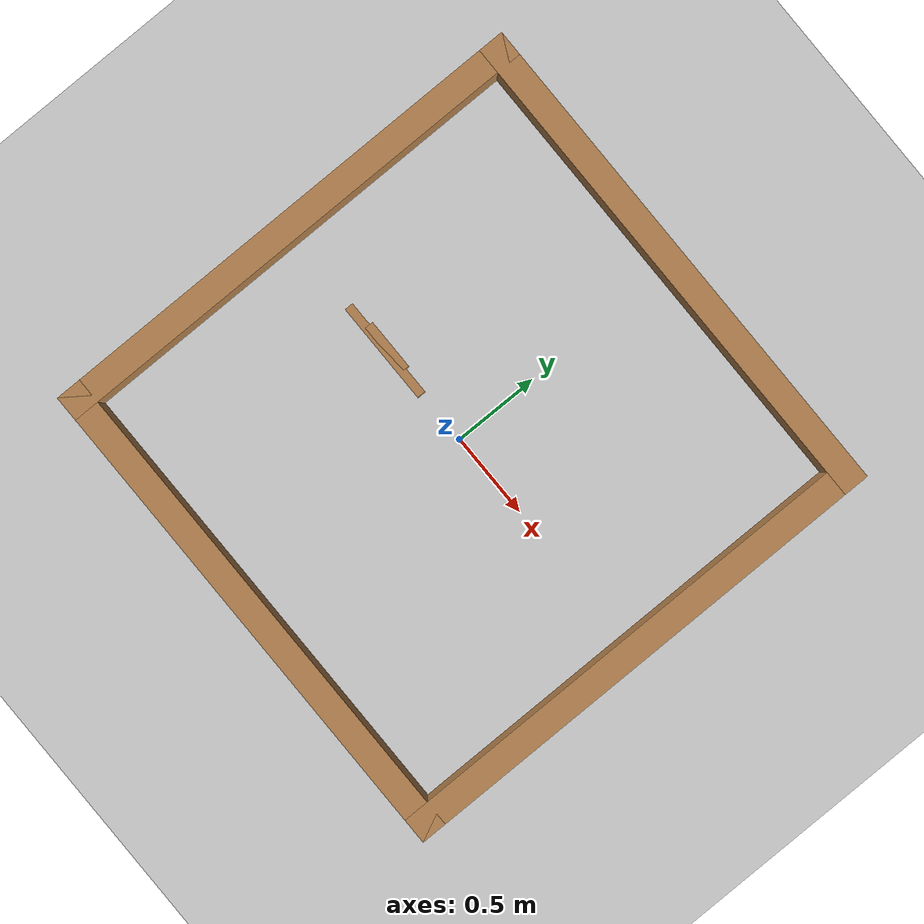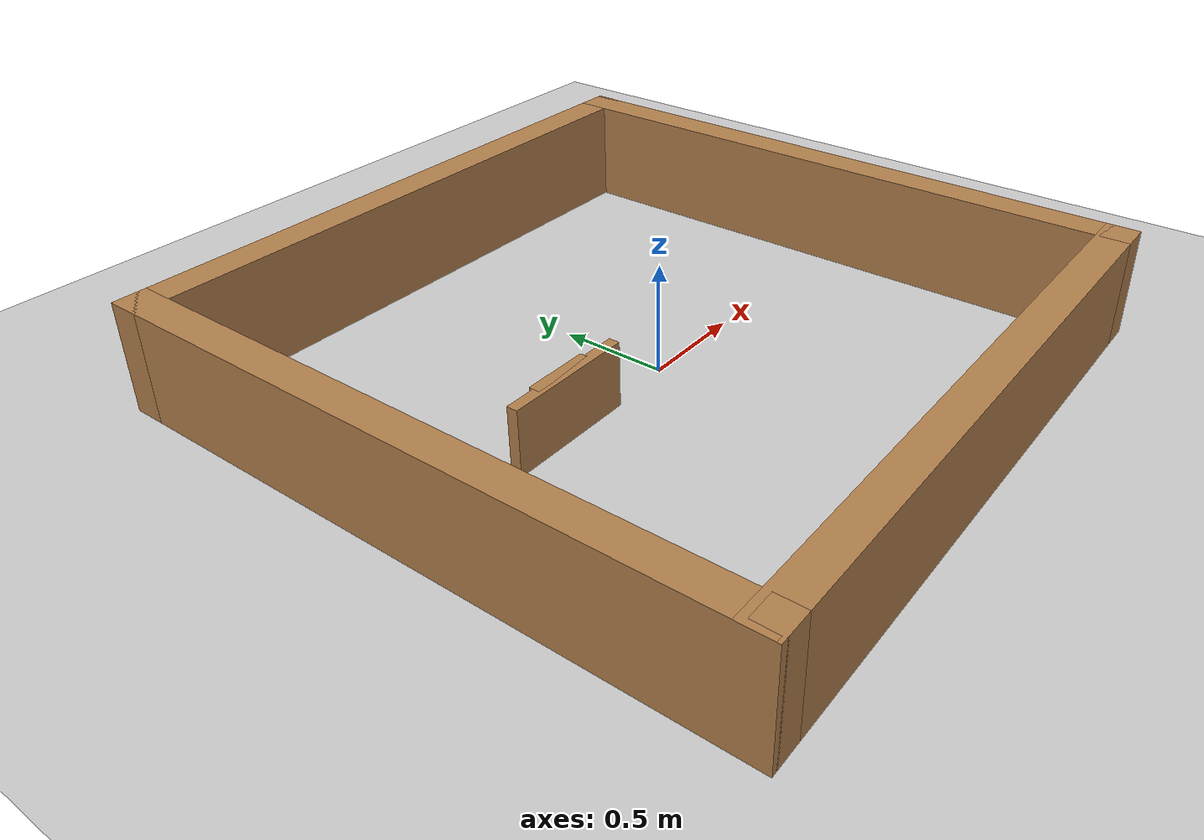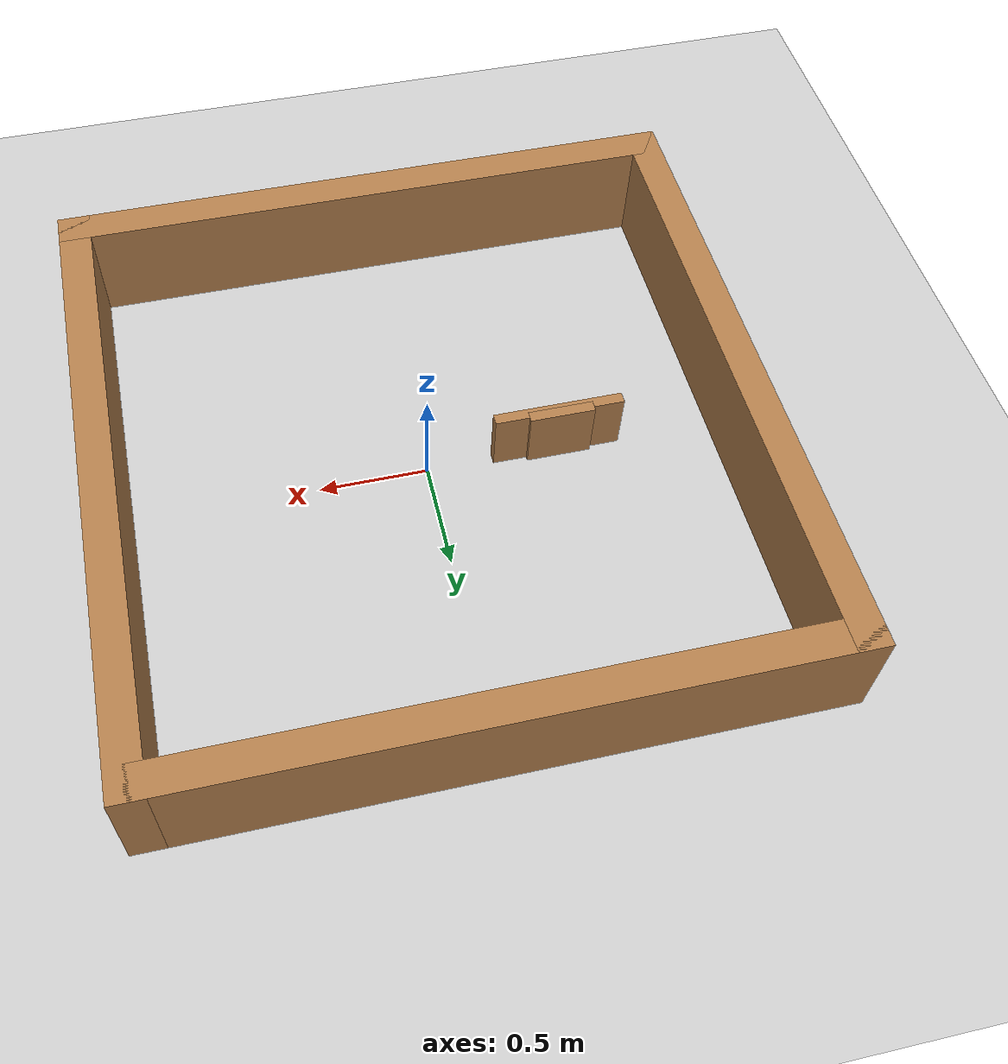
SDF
<sdf version="1.7">
 <world name="default">
  <light name="sun" type="directional">
   <pose>0 0 10 0 -0 0</pose>
   <diffuse>0.8 0.8 0.8 1</diffuse>
   <specular>0.2 0.2 0.2 1</specular>
   <attenuation>
    <range>1000</range>
    <constant>0.9</constant>
    <linear>0.01</linear>
    <quadratic>0.001</quadratic>
   </attenuation>
   <direction>-0.5 0.1 -0.9</direction>
   <spot><inner_angle>0</inner_angle><outer_angle>0</outer_angle><falloff>0</falloff></spot>
  </light>
  <model name="ground_plane">
   <static>1</static>
   <link name="link">
    <collision name="collision">
     <geometry><plane><normal>0 0 1</normal><size>100 100</size></plane></geometry>
     <surface>
      <contact><collide_bitmask>65535</collide_bitmask></contact>
      <friction><ode><mu>100</mu><mu2>50</mu2></ode></friction>
     </surface>
    </collision>
    <visual name="visual">
     <cast_shadows>0</cast_shadows>
     <geometry><plane><normal>0 0 1</normal><size>100 100</size></plane></geometry>
     <material>
      <script><uri>file://media/materials/scripts/gazebo.material</uri><name>Gazebo/Grey</name></script>
     </material>
    </visual>
   </link>
  </model>
  <gravity>0 0 -9.8</gravity>
  <magnetic_field>6e-06 2.3e-05 -4.2e-05</magnetic_field>
  <atmosphere type="adiabatic"/>
  <physics name="default_physics" default="0" type="ode">
   <max_step_size>0.001</max_step_size>
   <real_time_factor>1</real_time_factor>
   <real_time_update_rate>1000</real_time_update_rate>
  </physics>
  <scene><ambient>0.4 0.4 0.4 1</ambient><background>0.7 0.7 0.7 1</background><shadows>1</shadows></scene>
  <audio><device>default</device></audio>
  <spherical_coordinates>
   <surface_model>EARTH_WGS84</surface_model>
   <latitude_deg>0</latitude_deg>
   <longitude_deg>0</longitude_deg>
   <elevation>0</elevation>
   <heading_deg>0</heading_deg>
  </spherical_coordinates>
  <model name="square">
   <pose>0.001159 0.01701 0 0 -0 0</pose>
   <link name="Wall_5">
    <collision name="Wall_5_Collision">
     <geometry><box><size>3 0.15 0.5</size></box></geometry>
     <pose>0 0 0.25 0 -0 0</pose>
    </collision>
    <visual name="Wall_5_Visual">
     <pose>0 0 0.25 0 -0 0</pose>
     <geometry><box><size>3 0.15 0.5</size></box></geometry>
     <material>
      <script><uri>file://media/materials/scripts/gazebo.material</uri><name>Gazebo/Wood</name></script>
      <ambient>1 1 1 1</ambient>
     </material>
     <meta><layer>0</layer></meta>
    </visual>
    <pose>0 1.425 0 0 -0 3.14159</pose>
   </link>
   <link name="Wall_6">
    <collision name="Wall_6_Collision">
     <geometry><box><size>3 0.15 0.5</size></box></geometry>
     <pose>0 0 0.25 0 -0 0</pose>
    </collision>
    <visual name="Wall_6_Visual">
     <pose>0 0 0.25 0 -0 0</pose>
     <geometry><box><size>3 0.15 0.5</size></box></geometry>
     <material>
      <script><uri>file://media/materials/scripts/gazebo.material</uri><name>Gazebo/Wood</name></script>
      <ambient>1 1 1 1</ambient>
     </material>
     <meta><layer>0</layer></meta>
    </visual>
    <pose>-1.425 0 0 0 -0 -1.5708</pose>
   </link>
   <link name="Wall_7">
    <collision name="Wall_7_Collision">
     <geometry><box><size>3 0.15 0.5</size></box></geometry>
     <pose>0 0 0.25 0 -0 0</pose>
    </collision>
    <visual name="Wall_7_Visual">
     <pose>0 0 0.25 0 -0 0</pose>
     <geometry><box><size>3 0.15 0.5</size></box></geometry>
     <material>
      <script><uri>file://media/materials/scripts/gazebo.material</uri><name>Gazebo/Wood</name></script>
      <ambient>1 1 1 1</ambient>
     </material>
     <meta><layer>0</layer></meta>
    </visual>
    <pose>0 -1.425 0 0 -0 0</pose>
   </link>
   <link name="Wall_8">
    <collision name="Wall_8_Collision">
     <geometry><box><size>3 0.15 0.5</size></box></geometry>
     <pose>0 0 0.25 0 -0 0</pose>
    </collision>
    <visual name="Wall_8_Visual">
     <pose>0 0 0.25 0 -0 0</pose>
     <geometry><box><size>3 0.15 0.5</size></box></geometry>
     <material>
      <script><uri>file://media/materials/scripts/gazebo.material</uri><name>Gazebo/Wood</name></script>
      <ambient>1 1 1 1</ambient>
     </material>
     <meta><layer>0</layer></meta>
    </visual>
    <pose>1.425 0 0 0 -0 1.5708</pose>
   </link>
   <static>1</static>
  </model>
  <model name="wall30cm">
   <pose>-0.61722 0.012645 0 0 -0 0</pose>
   <link name="Wall_0">
    <collision name="Wall_0_Collision">
     <geometry><box><size>0.3 0.05 0.3</size></box></geometry>
     <pose>0 0 0.15 0 -0 0</pose>
    </collision>
    <visual name="Wall_0_Visual">
     <pose>0 0 0.15 0 -0 0</pose>
     <geometry><box><size>0.3 0.05 0.3</size></box></geometry>
     <material>
      <script><uri>file://media/materials/scripts/gazebo.material</uri><name>Gazebo/Wood</name></script>
      <ambient>1 1 1 1</ambient>
     </material>
     <meta><layer>0</layer></meta>
    </visual>
   </link>
   <static>1</static>
  </model>
  <model name="wall60cm">
   <pose>-0.609606 -0.006319 0 0 -0 0</pose>
   <link name="Wall_4">
    <collision name="Wall_4_Collision">
     <geometry><box><size>0.6 0.05 0.3</size></box></geometry>
     <pose>0 0 0.15 0 -0 0</pose>
    </collision>
    <visual name="Wall_4_Visual">
     <pose>0 0 0.15 0 -0 0</pose>
     <geometry><box><size>0.6 0.05 0.3</size></box></geometry>
     <material>
      <script><uri>file://media/materials/scripts/gazebo.material</uri><name>Gazebo/Wood</name></script>
      <ambient>1 1 1 1</ambient>
     </material>
     <meta><layer>0</layer></meta>
    </visual>
   </link>
   <static>1</static>
  </model>
 </world>
</sdf>
